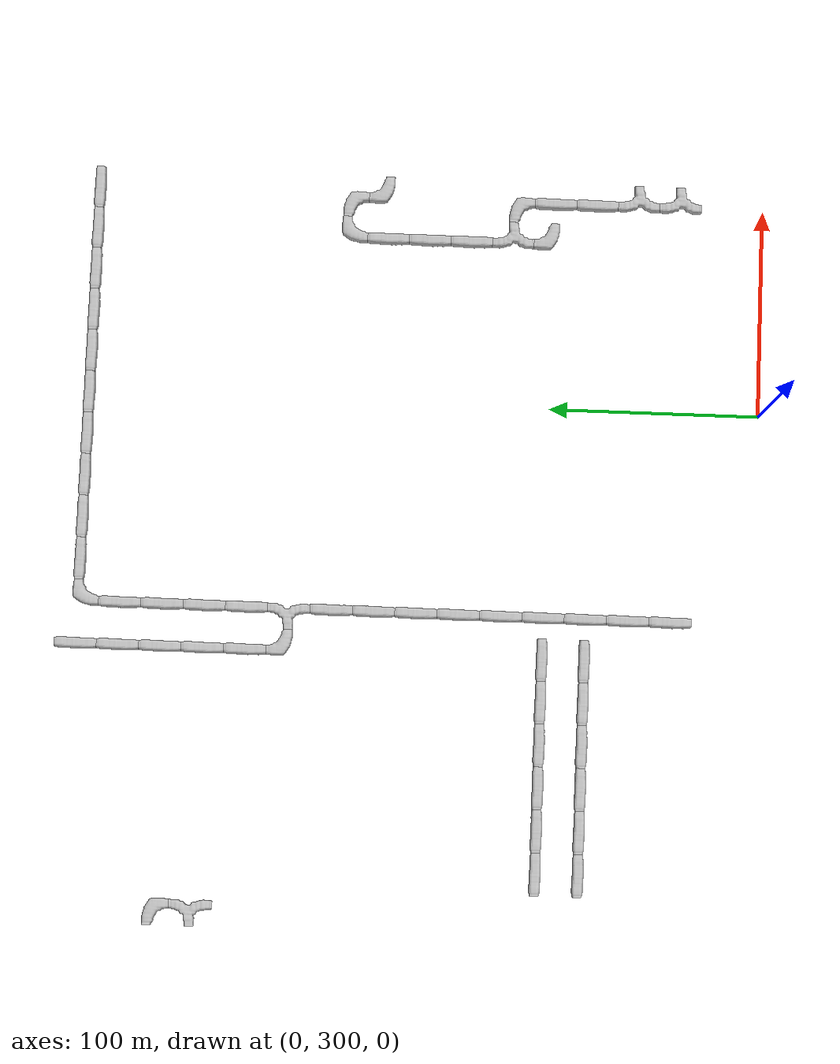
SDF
<sdf version="1.6">
 <world name="cave_32000">
  <include>
   <static>true</static>
   <name>cave_-11_19</name>
   <pose>-220 380 0 0 0 1.5707963267948966</pose>
   <uri>model://cave_straight_20m</uri>
  </include>
  <include>
   <static>true</static>
   <name>cave_-10_19</name>
   <pose>-200 380 0 0 0 1.5707963267948966</pose>
   <uri>model://cave_straight_20m</uri>
  </include>
  <include>
   <static>true</static>
   <name>cave_-9_19</name>
   <pose>-180 380 0 0 0 1.5707963267948966</pose>
   <uri>model://cave_straight_20m</uri>
  </include>
  <include>
   <static>true</static>
   <name>cave_-8_19</name>
   <pose>-160 380 0 0 0 1.5707963267948966</pose>
   <uri>model://cave_straight_20m</uri>
  </include>
  <include>
   <static>true</static>
   <name>cave_-7_19</name>
   <pose>-140 380 0 0 0 1.5707963267948966</pose>
   <uri>model://cave_straight_20m</uri>
  </include>
  <include>
   <static>true</static>
   <name>cave_-6_19</name>
   <pose>-120 380 0 0 0 1.5707963267948966</pose>
   <uri>model://cave_straight_20m</uri>
  </include>
  <include>
   <static>true</static>
   <name>cave_-11_20</name>
   <pose>-220 400 0 0 0 1.5707963267948966</pose>
   <uri>model://cave_straight_20m</uri>
  </include>
  <include>
   <static>true</static>
   <name>cave_-10_20</name>
   <pose>-200 400 0 0 0 1.5707963267948966</pose>
   <uri>model://cave_straight_20m</uri>
  </include>
  <include>
   <static>true</static>
   <name>cave_-9_20</name>
   <pose>-180 400 0 0 0 1.5707963267948966</pose>
   <uri>model://cave_straight_20m</uri>
  </include>
  <include>
   <static>true</static>
   <name>cave_-8_20</name>
   <pose>-160 400 0 0 0 1.5707963267948966</pose>
   <uri>model://cave_straight_20m</uri>
  </include>
  <include>
   <static>true</static>
   <name>cave_-7_20</name>
   <pose>-140 400 0 0 0 1.5707963267948966</pose>
   <uri>model://cave_straight_20m</uri>
  </include>
  <include>
   <static>true</static>
   <name>cave_-6_20</name>
   <pose>-120 400 0 0 0 1.5707963267948966</pose>
   <uri>model://cave_straight_20m</uri>
  </include>
  <include>
   <static>true</static>
   <name>cave_-12_28</name>
   <pose>-240 560 0 0 0 1.5707963267948966</pose>
   <uri>model://cave_3way_20m</uri>
  </include>
  <include>
   <static>true</static>
   <name>cave_-12_29</name>
   <pose>-240 580 0 0 0 3.141592653589793</pose>
   <uri>model://cave_L_20m</uri>
  </include>
  <include>
   <static>true</static>
   <name>cave_-5_17</name>
   <pose>-100 340 0 0 0 0.0</pose>
   <uri>model://cave_straight_20m</uri>
  </include>
  <include>
   <static>true</static>
   <name>cave_-5_18</name>
   <pose>-100 360 0 0 0 0.0</pose>
   <uri>model://cave_straight_20m</uri>
  </include>
  <include>
   <static>true</static>
   <name>cave_-5_19</name>
   <pose>-100 380 0 0 0 0.0</pose>
   <uri>model://cave_straight_20m</uri>
  </include>
  <include>
   <static>true</static>
   <name>cave_-5_20</name>
   <pose>-100 400 0 0 0 0.0</pose>
   <uri>model://cave_straight_20m</uri>
  </include>
  <include>
   <static>true</static>
   <name>cave_-5_21</name>
   <pose>-100 420 0 0 0 0.0</pose>
   <uri>model://cave_straight_20m</uri>
  </include>
  <include>
   <static>true</static>
   <name>cave_-5_22</name>
   <pose>-100 440 0 0 0 0.0</pose>
   <uri>model://cave_straight_20m</uri>
  </include>
  <include>
   <static>true</static>
   <name>cave_-5_23</name>
   <pose>-100 460 0 0 0 0.0</pose>
   <uri>model://cave_straight_20m</uri>
  </include>
  <include>
   <static>true</static>
   <name>cave_-5_24</name>
   <pose>-100 480 0 0 0 0.0</pose>
   <uri>model://cave_straight_20m</uri>
  </include>
  <include>
   <static>true</static>
   <name>cave_-5_25</name>
   <pose>-100 500 0 0 0 0.0</pose>
   <uri>model://cave_straight_20m</uri>
  </include>
  <include>
   <static>true</static>
   <name>cave_-5_26</name>
   <pose>-100 520 0 0 0 1.5707963267948966</pose>
   <uri>model://cave_3way_20m</uri>
  </include>
  <include>
   <static>true</static>
   <name>cave_-6_26</name>
   <pose>-120 520 0 0 0 0.0</pose>
   <uri>model://cave_L_20m</uri>
  </include>
  <include>
   <static>true</static>
   <name>cave_-6_27</name>
   <pose>-120 540 0 0 0 0.0</pose>
   <uri>model://cave_straight_20m</uri>
  </include>
  <include>
   <static>true</static>
   <name>cave_-6_28</name>
   <pose>-120 560 0 0 0 0.0</pose>
   <uri>model://cave_straight_20m</uri>
  </include>
  <include>
   <static>true</static>
   <name>cave_-6_29</name>
   <pose>-120 580 0 0 0 0.0</pose>
   <uri>model://cave_straight_20m</uri>
  </include>
  <include>
   <static>true</static>
   <name>cave_-6_30</name>
   <pose>-120 600 0 0 0 0.0</pose>
   <uri>model://cave_straight_20m</uri>
  </include>
  <include>
   <static>true</static>
   <name>cave_-6_31</name>
   <pose>-120 620 0 0 0 0.0</pose>
   <uri>model://cave_straight_20m</uri>
  </include>
  <include>
   <static>true</static>
   <name>cave_-5_27</name>
   <pose>-100 540 0 0 0 0.0</pose>
   <uri>model://cave_straight_20m</uri>
  </include>
  <include>
   <static>true</static>
   <name>cave_-5_28</name>
   <pose>-100 560 0 0 0 0.0</pose>
   <uri>model://cave_straight_20m</uri>
  </include>
  <include>
   <static>true</static>
   <name>cave_-5_29</name>
   <pose>-100 580 0 0 0 0.0</pose>
   <uri>model://cave_straight_20m</uri>
  </include>
  <include>
   <static>true</static>
   <name>cave_-5_30</name>
   <pose>-100 600 0 0 0 0.0</pose>
   <uri>model://cave_straight_20m</uri>
  </include>
  <include>
   <static>true</static>
   <name>cave_-5_31</name>
   <pose>-100 620 0 0 0 -1.5707963267948966</pose>
   <uri>model://cave_L_20m</uri>
  </include>
  <include>
   <static>true</static>
   <name>cave_-4_31</name>
   <pose>-80 620 0 0 0 1.5707963267948966</pose>
   <uri>model://cave_straight_20m</uri>
  </include>
  <include>
   <static>true</static>
   <name>cave_-3_31</name>
   <pose>-60 620 0 0 0 1.5707963267948966</pose>
   <uri>model://cave_straight_20m</uri>
  </include>
  <include>
   <static>true</static>
   <name>cave_-2_31</name>
   <pose>-40 620 0 0 0 1.5707963267948966</pose>
   <uri>model://cave_straight_20m</uri>
  </include>
  <include>
   <static>true</static>
   <name>cave_-1_31</name>
   <pose>-20 620 0 0 0 1.5707963267948966</pose>
   <uri>model://cave_straight_20m</uri>
  </include>
  <include>
   <static>true</static>
   <name>cave_0_31</name>
   <pose>0 620 0 0 0 1.5707963267948966</pose>
   <uri>model://cave_straight_20m</uri>
  </include>
  <include>
   <static>true</static>
   <name>cave_1_31</name>
   <pose>20 620 0 0 0 1.5707963267948966</pose>
   <uri>model://cave_straight_20m</uri>
  </include>
  <include>
   <static>true</static>
   <name>cave_2_31</name>
   <pose>40 620 0 0 0 1.5707963267948966</pose>
   <uri>model://cave_straight_20m</uri>
  </include>
  <include>
   <static>true</static>
   <name>cave_3_31</name>
   <pose>60 620 0 0 0 1.5707963267948966</pose>
   <uri>model://cave_straight_20m</uri>
  </include>
  <include>
   <static>true</static>
   <name>cave_4_31</name>
   <pose>80 620 0 0 0 1.5707963267948966</pose>
   <uri>model://cave_straight_20m</uri>
  </include>
  <include>
   <static>true</static>
   <name>cave_5_31</name>
   <pose>100 620 0 0 0 1.5707963267948966</pose>
   <uri>model://cave_straight_20m</uri>
  </include>
  <include>
   <static>true</static>
   <name>cave_5_24</name>
   <pose>100 480 0 0 0 0.0</pose>
   <uri>model://cave_L_20m</uri>
  </include>
  <include>
   <static>true</static>
   <name>cave_5_25</name>
   <pose>100 500 0 0 0 3.141592653589793</pose>
   <uri>model://cave_L_20m</uri>
  </include>
  <include>
   <static>true</static>
   <name>cave_4_25</name>
   <pose>80 500 0 0 0 -1.5707963267948966</pose>
   <uri>model://cave_L_20m</uri>
  </include>
  <include>
   <static>true</static>
   <name>cave_4_24</name>
   <pose>80 480 0 0 0 0.0</pose>
   <uri>model://cave_straight_20m</uri>
  </include>
  <include>
   <static>true</static>
   <name>cave_4_23</name>
   <pose>80 460 0 0 0 0.0</pose>
   <uri>model://cave_straight_20m</uri>
  </include>
  <include>
   <static>true</static>
   <name>cave_4_22</name>
   <pose>80 440 0 0 0 0.0</pose>
   <uri>model://cave_straight_20m</uri>
  </include>
  <include>
   <static>true</static>
   <name>cave_4_21</name>
   <pose>80 420 0 0 0 -1.5707963267948966</pose>
   <uri>model://cave_3way_20m</uri>
  </include>
  <include>
   <static>true</static>
   <name>cave_5_21</name>
   <pose>100 420 0 0 0 3.141592653589793</pose>
   <uri>model://cave_L_20m</uri>
  </include>
  <include>
   <static>true</static>
   <name>cave_5_20</name>
   <pose>100 400 0 0 0 0.0</pose>
   <uri>model://cave_straight_20m</uri>
  </include>
  <include>
   <static>true</static>
   <name>cave_5_19</name>
   <pose>100 380 0 0 0 0.0</pose>
   <uri>model://cave_straight_20m</uri>
  </include>
  <include>
   <static>true</static>
   <name>cave_5_18</name>
   <pose>100 360 0 0 0 -1.5707963267948966</pose>
   <uri>model://cave_3way_20m</uri>
  </include>
  <include>
   <static>true</static>
   <name>cave_5_17</name>
   <pose>100 340 0 0 0 -1.5707963267948966</pose>
   <uri>model://cave_3way_20m</uri>
  </include>
  <include>
   <static>true</static>
   <name>cave_4_20</name>
   <pose>80 400 0 0 0 0.0</pose>
   <uri>model://cave_L_20m</uri>
  </include>
 </world>
</sdf>
